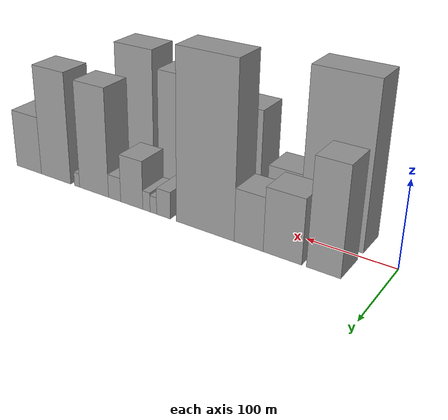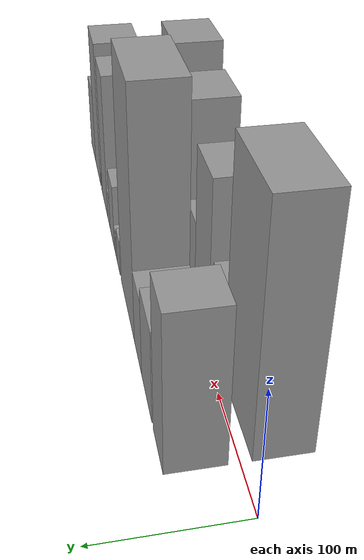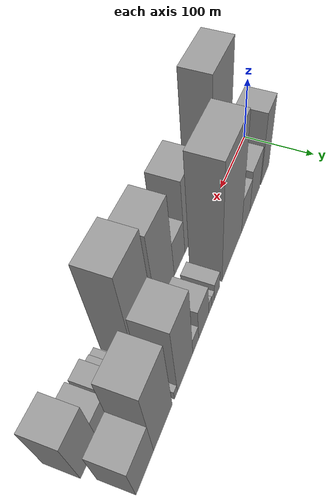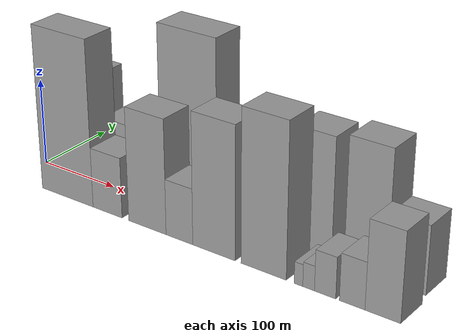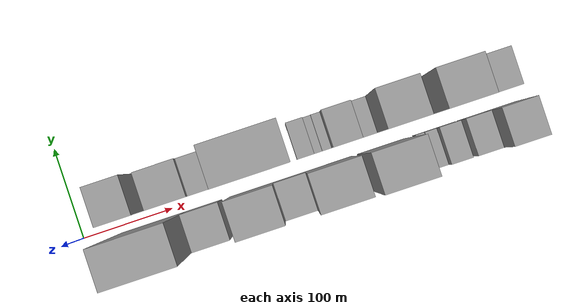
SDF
<sdf version="1.6">
 <world name="default">
  <scene>
   <sky><clouds><speed>12</speed></clouds></sky>
   <ambient>0.4 0.4 0.4 1</ambient>
   <background>0.7 0.7 0.7 1</background>
   <shadows>1</shadows>
  </scene>
  <gravity>0 0 -9.8066</gravity>
  <magnetic_field>6e-06 2.3e-05 -4.2e-05</magnetic_field>
  <physics default="0" name="default_physics" type="ode">
   <ode>
    <solver>
     <type>quick</type>
     <iters>10</iters>
     <sor>1.0</sor>
     <use_dynamic_moi_rescaling>0</use_dynamic_moi_rescaling>
    </solver>
    <constraints>
     <cfm>0</cfm>
     <erp>0.2</erp>
     <contact_max_correcting_vel>100</contact_max_correcting_vel>
     <contact_surface_layer>0.001</contact_surface_layer>
    </constraints>
   </ode>
   <max_step_size>0.004</max_step_size>
   <real_time_factor>1</real_time_factor>
   <real_time_update_rate>250</real_time_update_rate>
  </physics>
  <light name="sun" type="directional">
   <pose>0 0 10 0 0 0</pose>
   <diffuse>0.8 0.8 0.8 1</diffuse>
   <specular>0.2 0.2 0.2 1</specular>
   <attenuation>
    <range>1000</range>
    <constant>0.9</constant>
    <linear>0.01</linear>
    <quadratic>0.001</quadratic>
   </attenuation>
   <direction>-0.5 0.1 -0.9</direction>
  </light>
  <model name="building_1">
   <static>1</static>
   <pose>58.5910 27.5000 0 0.000000 0.000000 1.570796</pose>
   <link name="link">
    <pose>0 0 61.50 0 0 0</pose>
    <collision name="collision"><geometry><box><size>40.0000 37.1820 123.0000</size></box></geometry></collision>
    <visual name="visual">
     <cast_shadows>0</cast_shadows>
     <geometry><box><size>40.0000 37.1820 123.0000</size></box></geometry>
     <material>
      <script>
       <uri>model://grey_wall/materials/scripts</uri>
       <uri>model://grey_wall/materials/textures</uri>
       <name>vrc/grey_wall</name>
      </script>
     </material>
    </visual>
   </link>
  </model>
  <model name="building_2">
   <static>1</static>
   <pose>104.1878 27.5000 0 0.000000 0.000000 1.570796</pose>
   <link name="link">
    <pose>0 0 37.50 0 0 0</pose>
    <collision name="collision"><geometry><box><size>40.0000 44.0116 75.0000</size></box></geometry></collision>
    <visual name="visual">
     <cast_shadows>0</cast_shadows>
     <geometry><box><size>40.0000 44.0116 75.0000</size></box></geometry>
     <material>
      <script>
       <uri>model://grey_wall/materials/scripts</uri>
       <uri>model://grey_wall/materials/textures</uri>
       <name>vrc/grey_wall</name>
      </script>
     </material>
    </visual>
   </link>
  </model>
  <model name="building_3">
   <static>1</static>
   <pose>143.5479 27.5000 0 0.000000 0.000000 1.570796</pose>
   <link name="link">
    <pose>0 0 31.50 0 0 0</pose>
    <collision name="collision"><geometry><box><size>40.0000 34.7087 63.0000</size></box></geometry></collision>
    <visual name="visual">
     <cast_shadows>0</cast_shadows>
     <geometry><box><size>40.0000 34.7087 63.0000</size></box></geometry>
     <material>
      <script>
       <uri>model://grey_wall/materials/scripts</uri>
       <uri>model://grey_wall/materials/textures</uri>
       <name>vrc/grey_wall</name>
      </script>
     </material>
    </visual>
   </link>
  </model>
  <model name="building_4">
   <static>1</static>
   <pose>197.8656 27.5000 0 0.000000 0.000000 1.570796</pose>
   <link name="link">
    <pose>0 0 100.50 0 0 0</pose>
    <collision name="collision"><geometry><box><size>40.0000 73.9267 201.0000</size></box></geometry></collision>
    <visual name="visual">
     <cast_shadows>0</cast_shadows>
     <geometry><box><size>40.0000 73.9267 201.0000</size></box></geometry>
     <material>
      <script>
       <uri>model://grey_wall/materials/scripts</uri>
       <uri>model://grey_wall/materials/textures</uri>
       <name>vrc/grey_wall</name>
      </script>
     </material>
    </visual>
   </link>
  </model>
  <model name="building_5">
   <static>1</static>
   <pose>252.2206 27.5000 0 0.000000 0.000000 1.570796</pose>
   <link name="link">
    <pose>0 0 16.50 0 0 0</pose>
    <collision name="collision"><geometry><box><size>40.0000 18.7832 33.0000</size></box></geometry></collision>
    <visual name="visual">
     <cast_shadows>0</cast_shadows>
     <geometry><box><size>40.0000 18.7832 33.0000</size></box></geometry>
     <material>
      <script>
       <uri>model://grey_wall/materials/scripts</uri>
       <uri>model://grey_wall/materials/textures</uri>
       <name>vrc/grey_wall</name>
      </script>
     </material>
    </visual>
   </link>
  </model>
  <model name="building_6">
   <static>1</static>
   <pose>266.1803 27.5000 0 0.000000 0.000000 1.570796</pose>
   <link name="link">
    <pose>0 0 10.50 0 0 0</pose>
    <collision name="collision"><geometry><box><size>40.0000 9.1361 21.0000</size></box></geometry></collision>
    <visual name="visual">
     <cast_shadows>0</cast_shadows>
     <geometry><box><size>40.0000 9.1361 21.0000</size></box></geometry>
     <material>
      <script>
       <uri>model://grey_wall/materials/scripts</uri>
       <uri>model://grey_wall/materials/textures</uri>
       <name>vrc/grey_wall</name>
      </script>
     </material>
    </visual>
   </link>
  </model>
  <model name="building_7">
   <static>1</static>
   <pose>275.8593 27.5000 0 0.000000 0.000000 1.570796</pose>
   <link name="link">
    <pose>0 0 12.00 0 0 0</pose>
    <collision name="collision"><geometry><box><size>40.0000 10.2219 24.0000</size></box></geometry></collision>
    <visual name="visual">
     <cast_shadows>0</cast_shadows>
     <geometry><box><size>40.0000 10.2219 24.0000</size></box></geometry>
     <material>
      <script>
       <uri>model://grey_wall/materials/scripts</uri>
       <uri>model://grey_wall/materials/textures</uri>
       <name>vrc/grey_wall</name>
      </script>
     </material>
    </visual>
   </link>
  </model>
  <model name="building_8">
   <static>1</static>
   <pose>296.8819 27.5000 0 0.000000 0.000000 1.570796</pose>
   <link name="link">
    <pose>0 0 30.00 0 0 0</pose>
    <collision name="collision"><geometry><box><size>40.0000 31.8234 60.0000</size></box></geometry></collision>
    <visual name="visual">
     <cast_shadows>0</cast_shadows>
     <geometry><box><size>40.0000 31.8234 60.0000</size></box></geometry>
     <material>
      <script>
       <uri>model://grey_wall/materials/scripts</uri>
       <uri>model://grey_wall/materials/textures</uri>
       <name>vrc/grey_wall</name>
      </script>
     </material>
    </visual>
   </link>
  </model>
  <model name="building_9">
   <static>1</static>
   <pose>321.7833 27.5000 0 0.000000 0.000000 1.570796</pose>
   <link name="link">
    <pose>0 0 15.00 0 0 0</pose>
    <collision name="collision"><geometry><box><size>40.0000 17.9794 30.0000</size></box></geometry></collision>
    <visual name="visual">
     <cast_shadows>0</cast_shadows>
     <geometry><box><size>40.0000 17.9794 30.0000</size></box></geometry>
     <material>
      <script>
       <uri>model://grey_wall/materials/scripts</uri>
       <uri>model://grey_wall/materials/textures</uri>
       <name>vrc/grey_wall</name>
      </script>
     </material>
    </visual>
   </link>
  </model>
  <model name="building_10">
   <static>1</static>
   <pose>352.9895 27.5000 0 0.000000 0.000000 1.570796</pose>
   <link name="link">
    <pose>0 0 67.50 0 0 0</pose>
    <collision name="collision"><geometry><box><size>40.0000 44.4329 135.0000</size></box></geometry></collision>
    <visual name="visual">
     <cast_shadows>0</cast_shadows>
     <geometry><box><size>40.0000 44.4329 135.0000</size></box></geometry>
     <material>
      <script>
       <uri>model://grey_wall/materials/scripts</uri>
       <uri>model://grey_wall/materials/textures</uri>
       <name>vrc/grey_wall</name>
      </script>
     </material>
    </visual>
   </link>
  </model>
  <model name="building_11">
   <static>1</static>
   <pose>379.2676 27.5000 0 0.000000 0.000000 1.570796</pose>
   <link name="link">
    <pose>0 0 9.00 0 0 0</pose>
    <collision name="collision"><geometry><box><size>40.0000 8.1234 18.0000</size></box></geometry></collision>
    <visual name="visual">
     <cast_shadows>0</cast_shadows>
     <geometry><box><size>40.0000 8.1234 18.0000</size></box></geometry>
     <material>
      <script>
       <uri>model://grey_wall/materials/scripts</uri>
       <uri>model://grey_wall/materials/textures</uri>
       <name>vrc/grey_wall</name>
      </script>
     </material>
    </visual>
   </link>
  </model>
  <model name="building_12">
   <static>1</static>
   <pose>413.3480 27.5000 0 0.000000 0.000000 1.570796</pose>
   <link name="link">
    <pose>0 0 70.50 0 0 0</pose>
    <collision name="collision"><geometry><box><size>40.0000 48.0373 141.0000</size></box></geometry></collision>
    <visual name="visual">
     <cast_shadows>0</cast_shadows>
     <geometry><box><size>40.0000 48.0373 141.0000</size></box></geometry>
     <material>
      <script>
       <uri>model://grey_wall/materials/scripts</uri>
       <uri>model://grey_wall/materials/textures</uri>
       <name>vrc/grey_wall</name>
      </script>
     </material>
    </visual>
   </link>
  </model>
  <model name="building_13">
   <static>1</static>
   <pose>458.3385 27.5000 0 0.000000 0.000000 1.570796</pose>
   <link name="link">
    <pose>0 0 37.50 0 0 0</pose>
    <collision name="collision"><geometry><box><size>40.0000 41.9438 75.0000</size></box></geometry></collision>
    <visual name="visual">
     <cast_shadows>0</cast_shadows>
     <geometry><box><size>40.0000 41.9438 75.0000</size></box></geometry>
     <material>
      <script>
       <uri>model://grey_wall/materials/scripts</uri>
       <uri>model://grey_wall/materials/textures</uri>
       <name>vrc/grey_wall</name>
      </script>
     </material>
    </visual>
   </link>
  </model>
  <model name="building_14">
   <static>1</static>
   <pose>76.5968 -27.5000 0 0.000000 0.000000 1.570796</pose>
   <link name="link">
    <pose>0 0 94.50 0 0 0</pose>
    <collision name="collision"><geometry><box><size>40.0000 73.1936 189.0000</size></box></geometry></collision>
    <visual name="visual">
     <cast_shadows>0</cast_shadows>
     <geometry><box><size>40.0000 73.1936 189.0000</size></box></geometry>
     <material>
      <script>
       <uri>model://grey_wall/materials/scripts</uri>
       <uri>model://grey_wall/materials/textures</uri>
       <name>vrc/grey_wall</name>
      </script>
     </material>
    </visual>
   </link>
  </model>
  <model name="building_15">
   <static>1</static>
   <pose>133.2956 -27.5000 0 0.000000 0.000000 1.570796</pose>
   <link name="link">
    <pose>0 0 34.50 0 0 0</pose>
    <collision name="collision"><geometry><box><size>40.0000 40.2040 69.0000</size></box></geometry></collision>
    <visual name="visual">
     <cast_shadows>0</cast_shadows>
     <geometry><box><size>40.0000 40.2040 69.0000</size></box></geometry>
     <material>
      <script>
       <uri>model://grey_wall/materials/scripts</uri>
       <uri>model://grey_wall/materials/textures</uri>
       <name>vrc/grey_wall</name>
      </script>
     </material>
    </visual>
   </link>
  </model>
  <model name="building_16">
   <static>1</static>
   <pose>187.2038 -27.5000 0 0.000000 0.000000 1.570796</pose>
   <link name="link">
    <pose>0 0 64.50 0 0 0</pose>
    <collision name="collision"><geometry><box><size>40.0000 49.6124 129.0000</size></box></geometry></collision>
    <visual name="visual">
     <cast_shadows>0</cast_shadows>
     <geometry><box><size>40.0000 49.6124 129.0000</size></box></geometry>
     <material>
      <script>
       <uri>model://grey_wall/materials/scripts</uri>
       <uri>model://grey_wall/materials/textures</uri>
       <name>vrc/grey_wall</name>
      </script>
     </material>
    </visual>
   </link>
  </model>
  <model name="building_17">
   <static>1</static>
   <pose>229.1055 -27.5000 0 0.000000 0.000000 1.570796</pose>
   <link name="link">
    <pose>0 0 31.50 0 0 0</pose>
    <collision name="collision"><geometry><box><size>40.0000 34.1910 63.0000</size></box></geometry></collision>
    <visual name="visual">
     <cast_shadows>0</cast_shadows>
     <geometry><box><size>40.0000 34.1910 63.0000</size></box></geometry>
     <material>
      <script>
       <uri>model://grey_wall/materials/scripts</uri>
       <uri>model://grey_wall/materials/textures</uri>
       <name>vrc/grey_wall</name>
      </script>
     </material>
    </visual>
   </link>
  </model>
  <model name="building_18">
   <static>1</static>
   <pose>272.4776 -27.5000 0 0.000000 0.000000 1.570796</pose>
   <link name="link">
    <pose>0 0 73.50 0 0 0</pose>
    <collision name="collision"><geometry><box><size>40.0000 52.5531 147.0000</size></box></geometry></collision>
    <visual name="visual">
     <cast_shadows>0</cast_shadows>
     <geometry><box><size>40.0000 52.5531 147.0000</size></box></geometry>
     <material>
      <script>
       <uri>model://grey_wall/materials/scripts</uri>
       <uri>model://grey_wall/materials/textures</uri>
       <name>vrc/grey_wall</name>
      </script>
     </material>
    </visual>
   </link>
  </model>
  <model name="building_19">
   <static>1</static>
   <pose>332.4324 -27.5000 0 0.000000 0.000000 1.570796</pose>
   <link name="link">
    <pose>0 0 84.00 0 0 0</pose>
    <collision name="collision"><geometry><box><size>40.0000 53.3566 168.0000</size></box></geometry></collision>
    <visual name="visual">
     <cast_shadows>0</cast_shadows>
     <geometry><box><size>40.0000 53.3566 168.0000</size></box></geometry>
     <material>
      <script>
       <uri>model://grey_wall/materials/scripts</uri>
       <uri>model://grey_wall/materials/textures</uri>
       <name>vrc/grey_wall</name>
      </script>
     </material>
    </visual>
   </link>
  </model>
  <model name="building_20">
   <static>1</static>
   <pose>373.0162 -27.5000 0 0.000000 0.000000 1.570796</pose>
   <link name="link">
    <pose>0 0 12.00 0 0 0</pose>
    <collision name="collision"><geometry><box><size>40.0000 9.8111 24.0000</size></box></geometry></collision>
    <visual name="visual">
     <cast_shadows>0</cast_shadows>
     <geometry><box><size>40.0000 9.8111 24.0000</size></box></geometry>
     <material>
      <script>
       <uri>model://grey_wall/materials/scripts</uri>
       <uri>model://grey_wall/materials/textures</uri>
       <name>vrc/grey_wall</name>
      </script>
     </material>
    </visual>
   </link>
  </model>
  <model name="building_21">
   <static>1</static>
   <pose>384.4811 -27.5000 0 0.000000 0.000000 1.570796</pose>
   <link name="link">
    <pose>0 0 13.50 0 0 0</pose>
    <collision name="collision"><geometry><box><size>40.0000 13.1187 27.0000</size></box></geometry></collision>
    <visual name="visual">
     <cast_shadows>0</cast_shadows>
     <geometry><box><size>40.0000 13.1187 27.0000</size></box></geometry>
     <material>
      <script>
       <uri>model://grey_wall/materials/scripts</uri>
       <uri>model://grey_wall/materials/textures</uri>
       <name>vrc/grey_wall</name>
      </script>
     </material>
    </visual>
   </link>
  </model>
  <model name="building_22">
   <static>1</static>
   <pose>402.8111 -27.5000 0 0.000000 0.000000 1.570796</pose>
   <link name="link">
    <pose>0 0 22.50 0 0 0</pose>
    <collision name="collision"><geometry><box><size>40.0000 23.5412 45.0000</size></box></geometry></collision>
    <visual name="visual">
     <cast_shadows>0</cast_shadows>
     <geometry><box><size>40.0000 23.5412 45.0000</size></box></geometry>
     <material>
      <script>
       <uri>model://grey_wall/materials/scripts</uri>
       <uri>model://grey_wall/materials/textures</uri>
       <name>vrc/grey_wall</name>
      </script>
     </material>
    </visual>
   </link>
  </model>
  <model name="building_23">
   <static>1</static>
   <pose>432.3562 -27.5000 0 0.000000 0.000000 1.570796</pose>
   <link name="link">
    <pose>0 0 25.50 0 0 0</pose>
    <collision name="collision"><geometry><box><size>40.0000 27.5490 51.0000</size></box></geometry></collision>
    <visual name="visual">
     <cast_shadows>0</cast_shadows>
     <geometry><box><size>40.0000 27.5490 51.0000</size></box></geometry>
     <material>
      <script>
       <uri>model://grey_wall/materials/scripts</uri>
       <uri>model://grey_wall/materials/textures</uri>
       <name>vrc/grey_wall</name>
      </script>
     </material>
    </visual>
   </link>
  </model>
  <model name="building_24">
   <static>1</static>
   <pose>464.9122 -27.5000 0 0.000000 0.000000 1.570796</pose>
   <link name="link">
    <pose>0 0 48.00 0 0 0</pose>
    <collision name="collision"><geometry><box><size>40.0000 37.5631 96.0000</size></box></geometry></collision>
    <visual name="visual">
     <cast_shadows>0</cast_shadows>
     <geometry><box><size>40.0000 37.5631 96.0000</size></box></geometry>
     <material>
      <script>
       <uri>model://grey_wall/materials/scripts</uri>
       <uri>model://grey_wall/materials/textures</uri>
       <name>vrc/grey_wall</name>
      </script>
     </material>
    </visual>
   </link>
  </model>
 </world>
</sdf>
